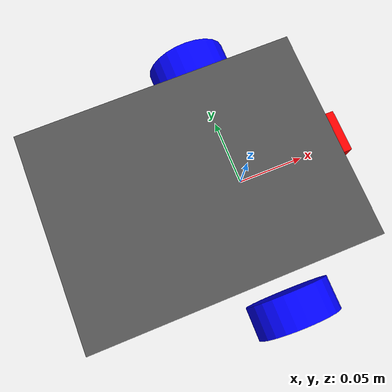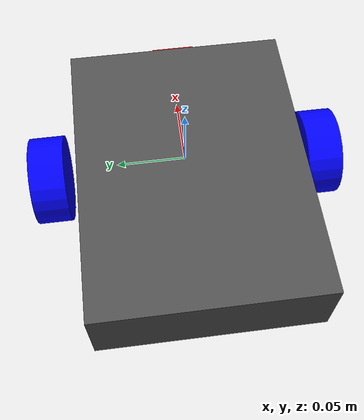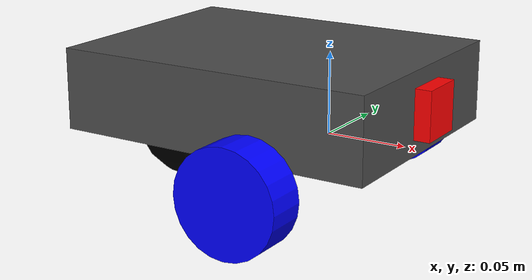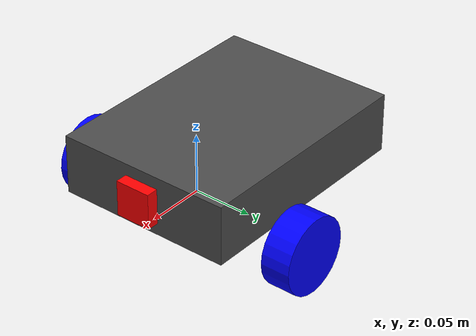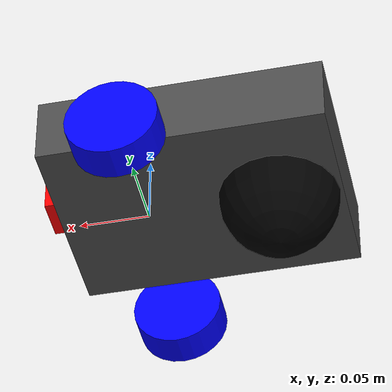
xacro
<?xml version="1.0"?>
<robot xmlns:xacro="http://www.ros.org/wiki/xacro"  name="robot">

    <xacro:arg name="use_ros2_control" default="true"/>
    <xacro:arg name="sim_mode" default="false"/>

    <xacro:include filename="robot_core.xacro" />
    <xacro:include filename="camera.xacro" />

    <xacro:if value="$(arg use_ros2_control)">
        <xacro:include filename="ros2_control.xacro" />
    </xacro:if>
    <xacro:unless value="$(arg use_ros2_control)">
        <xacro:include filename="gazebo_control.xacro" />
    </xacro:unless>

</robot>

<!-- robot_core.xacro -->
<robot xmlns:xacro="http://www.ros.org/wiki/xacro">

    <xacro:include filename="inertial_macros.xacro"/>

    <material name="white">
        <color rgba="1 1 1 1" />
    </material>

    <material name="black">
        <color rgba="0 0 0 1" />
    </material>

    <material name="grey">
        <color rgba="0.3 0.3 0.3 1" />
    </material>

    <material name="blue">
        <color rgba="0 0 1 1" />
    </material>

    <material name="red">
        <color rgba="1 0 0 1" />
    </material>

    <!-- BASE LINK -->

    <link name="base_link">

    </link>

    <!-- CHASSIS LINK -->

    <joint name="chassis_joint" type="fixed">
        <parent link="base_link" />
        <child link="chassis" />
        <origin xyz="-0.1375 0 0"/>
    </joint>

    <link name="chassis">
        <visual>
            <origin xyz="0.1 0 0.025"/>
            <geometry>
                <box size="0.2 0.15 0.05"/>
            </geometry>
            <material name="grey"/>
        </visual>
        <collision>
            <origin xyz="0.1 0 0.025"/>
            <geometry>
                <box size="0.2 0.15 0.05"/>
            </geometry>
        </collision>
        <xacro:inertial_box mass="0.5" x="0.2" y="0.15" z="0.05">
            <origin xyz="0.1 0 0.025" rpy="0 0 0"/>
        </xacro:inertial_box>
    </link>

    <gazebo reference="chassis">
        <material>Gazebo/DarkGrey</material>
    </gazebo>

    <!-- LEFT WHEEL LINK -->
    <joint name="left_wheel_joint" type="continuous">
        <parent link="base_link"/>
        <child link="left_wheel"/>
        <origin xyz="0 0.1 -0.01" rpy="-${pi/2} 0 0"/>
        <axis xyz="0 0 1"/>
    </joint>

    <link name="left_wheel">
        <visual>
            <origin xyz="0 0 0"/>
            <geometry>
                <cylinder radius="0.032" length="0.025"/>
            </geometry>
            <material name="blue"/>
        </visual>
        <collision>
            <origin xyz="0 0 0"/>
            <geometry>
                <sphere radius="0.032"/>
            </geometry>
        </collision>
        <xacro:inertial_cylinder mass="0.1" radius="0.032" length="0.025">
            <origin xyz="0 0 0" rpy="0 0 0"/>
        </xacro:inertial_cylinder>
    </link>

    <gazebo reference="left_wheel">
        <material>Gazebo/Blue</material>
    </gazebo>

    <!-- RIGHT WHEEL LINK -->
    <joint name="right_wheel_joint" type="continuous">
        <parent link="base_link"/>
        <child link="right_wheel"/>
        <origin xyz="0 -0.1 -0.01" rpy="${pi/2} 0 0"/>
        <axis xyz="0 0 -1"/>
    </joint>

    <link name="right_wheel">
        <visual>
            <origin xyz="0 0 0"/>
            <geometry>
                <cylinder radius="0.032" length="0.025"/>
            </geometry>
            <material name="blue"/>
        </visual>
        <collision>
            <origin xyz="0 0 0"/>
            <geometry>
                <sphere radius="0.032"/>
            </geometry>
        </collision>
        <xacro:inertial_cylinder mass="0.1" radius="0.032" length="0.025">
            <origin xyz="0 0 0" rpy="0 0 0"/>
        </xacro:inertial_cylinder>
    </link>

    <gazebo reference="right_wheel">
        <material>Gazebo/Blue</material>
    </gazebo>

    <!-- CASTER WHEEL LINK -->
    <joint name="caster_wheel_joint" type="fixed">
        <parent link="chassis"/>
        <child link="caster_wheel"/>
        <origin xyz="0.045 0 0"/>
    </joint>

    <link name="caster_wheel">
        <visual>
            <geometry>
                <sphere radius="0.0425"/>
            </geometry>
            <material name="black"/>
        </visual>
        <collision>
            <geometry>
                <sphere radius="0.0425"/>
            </geometry>
        </collision>
        <xacro:inertial_sphere mass="0.01" radius="0.0425">
            <origin xyz="0 0 0" rpy="0 0 0"/>
        </xacro:inertial_sphere>
    </link>

    <gazebo reference="caster_wheel">
        <material>Gazebo/Black</material>
        <mu1>0.001</mu1>
        <mu2>0.001</mu2>
    </gazebo>

</robot>

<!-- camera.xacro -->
<robot xmlns:xacro="http://www.ros.org/wiki/xacro" >

    <joint name="camera_joint" type="fixed">
        <parent link="chassis"/>
        <child link="camera_link"/>
        <origin xyz="0.205 0 0.025" rpy="0 0 0"/>
    </joint>

    <link name="camera_link">
        <visual>
            <geometry>
                <box size="0.010 0.03 0.03"/>
            </geometry>
            <material name="red"/>
        </visual>
    </link>

    <joint name="camera_optical_joint" type="fixed">
        <parent link="camera_link"/>
        <child link="camera_link_optical"/>
        <origin xyz="0 0 0" rpy="${-pi/2} 0 ${-pi/2}"/>
    </joint>

    <link name="camera_link_optical"></link>

    <gazebo reference="camera_link">
        <material>Gazebo/Red</material>

        <sensor name="camera" type="camera">
            <pose> 0 0 0 0 0 0 </pose>
            <visualize>false</visualize>
            <update_rate>10</update_rate>
            <camera>
                <horizontal_fov>1.7802358</horizontal_fov>
                <image>
                    <width>640</width>
                    <height>480</height>
                    <format>R8G8B8</format>
                </image>
                <clip>
                    <near>0.05</near>
                    <far>10</far>
                </clip>
            </camera>
            <plugin name="camera_controller" filename="libgazebo_ros_camera.so">
                <frame_name>camera_link_optical</frame_name>
            </plugin>
        </sensor>
    </gazebo>

</robot>
